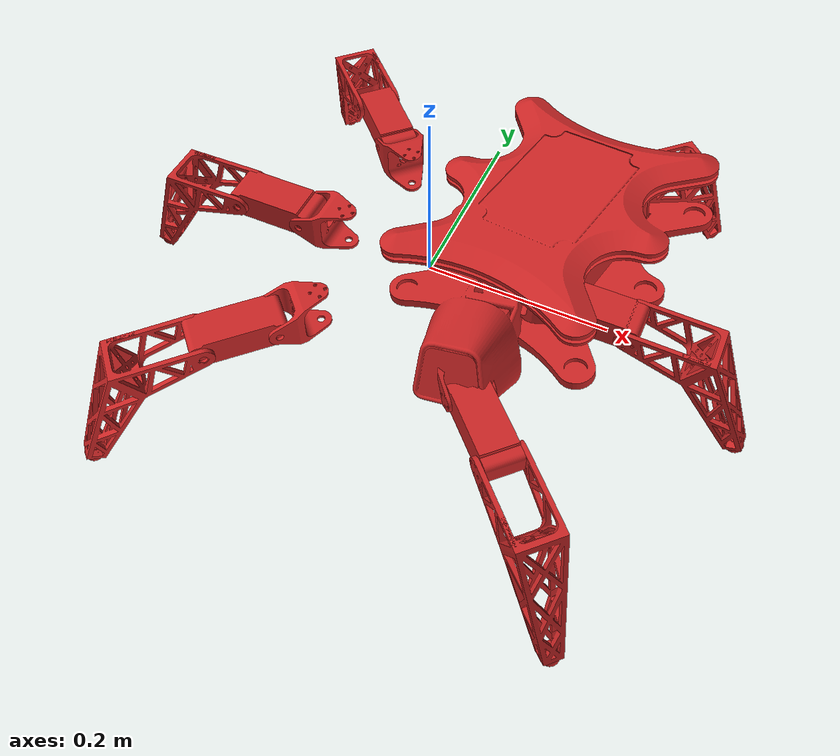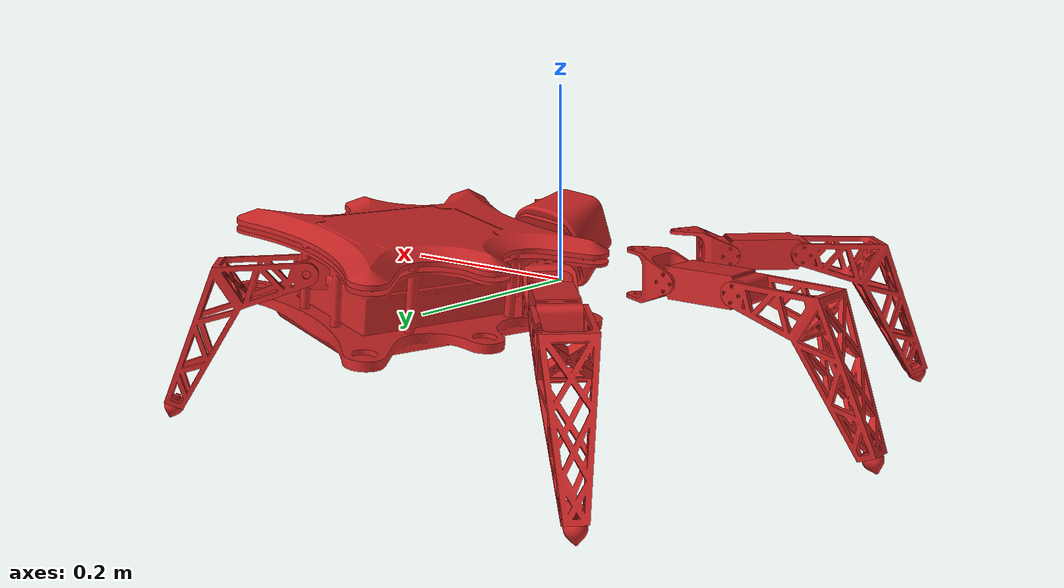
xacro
<?xml version="1.0"?>

<robot name="hexapod" xmlns:xacro="https://www.ros.org/wiki/xacro">

	<xacro:include filename="$(find hexapod_description)/urdf/links_joints_macro.xacro" />

	<!-- Used for fixing robot to Gazebo 'base_link' -->
		<link name="base_dummy"/>

 		<joint name="fixed_joint" type="fixed">
  			<parent link="base_dummy"/>
   			<child link="base_link"/>
   			<origin xyz="0 0 0" rpy="0 0 0"/>
 		</joint>

		<m_base_link name="base_link"
				origin_xyz="0 0 0" origin_rpy="0 0 0" inertia_origin_xyz="0 0 0.021" />

		<!-- LEG 1 (North East) -->
			<m_joint name="base_link__leg1_coxa" type="revolute" axis_xyz="0 0 1"
					 effort="2.8" lower="-1.5708" upper="1.5708" velocity="5.6548668"
			 		 origin_xyz="0.072981 0.109608 0.021" origin_rpy="0 3.14159 -0.7854"
					 parent="base_link" child="leg1_coxa" />

			<m_coxa_link name="leg1_coxa"
					origin_xyz="0 0 0" origin_rpy="0 3.14159 0" inertia_origin_xyz="0 0.023937 0" />

				<m_joint name="leg1_coxa__leg1_femur" type="revolute" axis_xyz="0 0 1"
				 effort="2.8" lower="-1.5708" upper="1.5708" velocity="5.6548668"
				 origin_xyz="0 0.047868 0" origin_rpy="-1.5708 0 1.5708"
				 parent="leg1_coxa" child="leg1_femur" />

				<m_femur_link name="leg1_femur"
						origin_xyz="0.0385 0 0" origin_rpy="-1.5708 0 0"
						inertia_origin_xyz="0.0385 0 0" />

					<m_joint name="leg1_femur__leg1_tibia" type="revolute" axis_xyz="0 0 1"
					 effort="2.8" lower="-1.5708" upper="1.5708" velocity="5.6548668"
					 origin_xyz="0.077 0 0" origin_rpy="0 0 0"
					 parent="leg1_femur" child="leg1_tibia"/>

					<m_tibia_link name="leg1_tibia"
							origin_xyz="0 0 0" origin_rpy="1.5708 0 0"
							inertia_origin_xyz="0.077796 -0.036156 0"/>

						<m_joint_fixed name="leg1_tibia__leg1_rubber_tip" type="fixed"
						 parent="leg1_tibia" child="leg1_rubber_tip" />

						<m_rubber_tip_link name="leg1_rubber_tip"
								origin_xyz="0.136283 -0.133814 0" origin_rpy="1.5708 0 0.3769938"
								inertia_origin_xyz="0.136283 -0.133814 0"/>

		<!-- LEG 2 (North West) -->
			<m_joint name="base_link__leg2_coxa" type="revolute" axis_xyz="0 0 1"
					 effort="2.8" lower="-1.5708" upper="1.5708" velocity="5.6548668"
			 		 origin_xyz="-0.072981 0.109608 0.021" origin_rpy="0 3.14159 0.7854"
					 parent="base_link" child="leg2_coxa" />

			<m_coxa_link name="leg2_coxa"
					origin_xyz="0 0 0" origin_rpy="0 3.14159 0" inertia_origin_xyz="0 0.023937 0"/>

				<m_joint name="leg2_coxa__leg2_femur" type="revolute" axis_xyz="0 0 1"
						 effort="2.8" lower="-1.5708" upper="1.5708" velocity="5.6548668"
						 origin_xyz="0 0.047868 0" origin_rpy="-1.5708 0 1.5708"
						 parent="leg2_coxa" child="leg2_femur" />

				<m_femur_link name="leg2_femur"
						origin_xyz="0.0385 0 0" origin_rpy="-1.5708 0 0"
						inertia_origin_xyz="0.0385 0 0"/>

					<m_joint name="leg2_femur__leg2_tibia" type="revolute" axis_xyz="0 0 1"
					 effort="2.8" lower="-1.5708" upper="1.5708" velocity="5.6548668"
					 origin_xyz="0.077 0 0" origin_rpy="0 0 0"
					 parent="leg2_femur" child="leg2_tibia" />

					<m_tibia_link name="leg2_tibia"
							origin_xyz="0 0 0" origin_rpy="1.5708 0 0"
							inertia_origin_xyz="0.077796 -0.036156 0"/>

						<m_joint_fixed name="leg2_tibia__leg2_rubber_tip" type="fixed"
						 parent="leg2_tibia" child="leg2_rubber_tip" />

						<m_rubber_tip_link name="leg2_rubber_tip"
								origin_xyz="0.136283 -0.133814 0" origin_rpy="1.5708 0 0.3769938"
								inertia_origin_xyz="0.136283 -0.133814 0"/>

		<!-- LEG 3 (East) -->
			<m_joint name="base_link__leg3_coxa" type="revolute" axis_xyz="0 0 1"
					 effort="2.8" lower="-1.5708" upper="1.5708" velocity="5.6548668"
			 		 origin_xyz="0.09850 0 0.021" origin_rpy="0 3.14159 -1.5708"
					 parent="base_link" child="leg3_coxa" />

			<m_coxa_link name="leg3_coxa"
					origin_xyz="0 0 0" origin_rpy="0 3.14159 0" inertia_origin_xyz="0 0.023937 0"/>

				<m_joint name="leg3_coxa__leg3_femur" type="revolute" axis_xyz="0 0 1"
						 effort="2.8" lower="-1.5708" upper="1.5708" velocity="5.6548668"
						 origin_xyz="0 0.047868 0" origin_rpy="-1.5708 0 1.5708"
						 parent="leg3_coxa" child="leg3_femur" />

				<m_femur_link name="leg3_femur"
						origin_xyz="0.0385 0 0" origin_rpy="-1.5708 0 0"
						inertia_origin_xyz="0.0385 0 0"/>

					<m_joint name="leg3_femur__leg3_tibia" type="revolute" axis_xyz="0 0 1"
					 effort="2.8" lower="-1.5708" upper="1.5708" velocity="5.6548668"
					 origin_xyz="0.077 0 0" origin_rpy="0 0 0"
					 parent="leg3_femur" child="leg3_tibia" />

					<m_tibia_link name="leg3_tibia"
							origin_xyz="0 0 0" origin_rpy="1.5708 0 0"
							inertia_origin_xyz="0.077796 -0.036156 0"/>

						<m_joint_fixed name="leg3_tibia__leg3_rubber_tip" type="fixed"
						 parent="leg3_tibia" child="leg3_rubber_tip" />

						<m_rubber_tip_link name="leg3_rubber_tip"
								origin_xyz="0.136283 -0.133814 0" origin_rpy="1.5708 0 0.3769938"
								inertia_origin_xyz="0.136283 -0.133814 0"/>

		<!-- LEG 4 (West) -->
			<m_joint name="base_link__leg4_coxa" type="revolute" axis_xyz="0 0 1"
					 effort="2.8" lower="-1.5708" upper="1.5708" velocity="5.6548668"
			 		 origin_xyz="-0.09850 0 0.021" origin_rpy="0 3.14159 1.5708"
					 parent="base_link" child="leg4_coxa" />

			<m_coxa_link name="leg4_coxa"
					origin_xyz="0 0 0" origin_rpy="0 3.14159 0" inertia_origin_xyz="0 0.023937 0"/>

				<m_joint name="leg4_coxa__leg4_femur" type="revolute" axis_xyz="0 0 1"
				 effort="2.8" lower="-1.5708" upper="1.5708" velocity="5.6548668"
				 origin_xyz="0 0.047868 0" origin_rpy="-1.5708 0 1.5708"
				 parent="leg4_coxa" child="leg4_femur" />

				<m_femur_link name="leg4_femur"
						origin_xyz="0.0385 0 0" origin_rpy="-1.5708 0 0"
						inertia_origin_xyz="0.0385 0 0"/>

					<m_joint name="leg4_femur__leg4_tibia" type="revolute" axis_xyz="0 0 1"
					 effort="2.8" lower="-1.5708" upper="1.5708" velocity="5.6548668"
					 origin_xyz="0.077 0 0" origin_rpy="0 0 0"
					 parent="leg4_femur" child="leg4_tibia" />

					<m_tibia_link name="leg4_tibia"
							origin_xyz="0 0 0" origin_rpy="1.5708 0 0"
							inertia_origin_xyz="0.077796 -0.036156 0"/>

						<m_joint_fixed name="leg4_tibia__leg4_rubber_tip" type="fixed"
						 parent="leg4_tibia" child="leg4_rubber_tip" />

						<m_rubber_tip_link name="leg4_rubber_tip"
								origin_xyz="0.136283 -0.133814 0" origin_rpy="1.5708 0 0.3769938"
								inertia_origin_xyz="0.136283 -0.133814 0"/>

		<!-- LEG 5 (South East) -->
			<m_joint name="base_link__leg5_coxa" type="revolute" axis_xyz="0 0 1"
					 effort="2.8" lower="-1.5708" upper="1.5708" velocity="5.6548668"
			 		 origin_xyz="0.072981 -0.109608 0.021" origin_rpy="0 3.14159 -2.3562"
					 parent="base_link" child="leg5_coxa" />

			<m_coxa_link name="leg5_coxa"
					origin_xyz="0 0 0" origin_rpy="0 3.14159 0" inertia_origin_xyz="0 0.023937 0"/>

				<m_joint name="leg5_coxa__leg5_femur" type="revolute" axis_xyz="0 0 1"
						 effort="2.8" lower="-1.5708" upper="1.5708" velocity="5.6548668"
						 origin_xyz="0 0.047868 0" origin_rpy="-1.5708 0 1.5708"
						 parent="leg5_coxa" child="leg5_femur" />

				<m_femur_link name="leg5_femur"
						origin_xyz="0.0385 0 0" origin_rpy="-1.5708 0 0"
						inertia_origin_xyz="0.0385 0 0"/>

					<m_joint name="leg5_femur__leg5_tibia" type="revolute" axis_xyz="0 0 1"
					 effort="2.8" lower="-1.5708" upper="1.5708" velocity="5.6548668"
					 origin_xyz="0.077 0 0" origin_rpy="0 0 0"
					 parent="leg5_femur" child="leg5_tibia" />

					<m_tibia_link name="leg5_tibia"
							origin_xyz="0 0 0" origin_rpy="1.5708 0 0"
							inertia_origin_xyz="0.077796 -0.036156 0"/>

						<m_joint_fixed name="leg5_tibia__leg5_rubber_tip" type="fixed"
						 parent="leg5_tibia" child="leg5_rubber_tip" />

						<m_rubber_tip_link name="leg5_rubber_tip"
								origin_xyz="0.136283 -0.133814 0" origin_rpy="1.5708 0 0.3769938"
								inertia_origin_xyz="0.136283 -0.133814 0"/>

		<!-- LEG 6 (South West) -->
			<m_joint name="base_link__leg6_coxa" type="revolute" axis_xyz="0 0 1"
					 effort="2.8" lower="-1.5708" upper="1.5708" velocity="5.6548668"
			 		 origin_xyz="-0.072981 -0.109608 0.021" origin_rpy="0 3.14159 2.35622"
					 parent="base_link" child="leg6_coxa" />

			<m_coxa_link name="leg6_coxa"
					origin_xyz="0 0 0" origin_rpy="0 3.14159 0" inertia_origin_xyz="0 0.023937 0"/>

				<m_joint name="leg6_coxa__leg6_femur" type="revolute" axis_xyz="0 0 1"
						 effort="2.8" lower="-1.5708" upper="1.5708" velocity="5.6548668"
						 origin_xyz="0 0.047868 0" origin_rpy="-1.5708 0 1.5708"
						 parent="leg6_coxa" child="leg6_femur" />

				<m_femur_link name="leg6_femur"
						origin_xyz="0.0385 0 0" origin_rpy="-1.5708 0 0"
						inertia_origin_xyz="0.0385 0 0"/>

					<m_joint name="leg6_femur__leg6_tibia" type="revolute" axis_xyz="0 0 1"
					 effort="2.8" lower="-1.5708" upper="1.5708" velocity="5.6548668"
					 origin_xyz="0.077 0 0" origin_rpy="0 0 0"
					 parent="leg6_femur" child="leg6_tibia" />

					<m_tibia_link name="leg6_tibia"
							origin_xyz="0 0 0" origin_rpy="1.5708 0 0"
							inertia_origin_xyz="0.077796 -0.036156 0"/>

						<m_joint_fixed name="leg6_tibia__leg6_rubber_tip" type="fixed"
						 parent="leg6_tibia" child="leg6_rubber_tip" />

						<m_rubber_tip_link name="leg6_rubber_tip"
								origin_xyz="0.136283 -0.133814 0" origin_rpy="1.5708 0 0.3769938"
								inertia_origin_xyz="0.136283 -0.133814 0"/>

	<transmission name ="trans_base_link__leg1_coxa">
		<type>transmission_interface/SimpleTransmission</type>
		<joint name="base_link__leg1_coxa">
			<hardwareInterface>EffortJointInterface</hardwareInterface>
		</joint>
		<actuator name="motor_base_link__leg1_coxa">
			<hardwareInterface>EffortJointInterface</hardwareInterface>
			<mechanicalReduction>1</mechanicalReduction>
		</actuator>
	</transmission>

	<transmission name ="trans_leg1_coxa__leg1_femur">
		<type>transmission_interface/SimpleTransmission</type>
		<joint name="leg1_coxa__leg1_femur">
			<hardwareInterface>EffortJointInterface</hardwareInterface>
		</joint>
		<actuator name="motor_leg1_coxa__leg1_femur">
			<hardwareInterface>EffortJointInterface</hardwareInterface>
			<mechanicalReduction>1</mechanicalReduction>
		</actuator>
	</transmission>

	<transmission name ="trans_leg1_femur__leg1_tibia">
		<type>transmission_interface/SimpleTransmission</type>
		<joint name="leg1_femur__leg1_tibia">
			<hardwareInterface>EffortJointInterface</hardwareInterface>
		</joint>
		<actuator name="motor_leg1_femur__leg1_tibia">
			<hardwareInterface>EffortJointInterface</hardwareInterface>
			<mechanicalReduction>1</mechanicalReduction>
		</actuator>
	</transmission>

	<transmission name ="trans_base_link__leg2_coxa">
		<type>transmission_interface/SimpleTransmission</type>
		<joint name="base_link__leg2_coxa">
			<hardwareInterface>EffortJointInterface</hardwareInterface>
		</joint>
		<actuator name="motor_base_link__leg2_coxa">
			<hardwareInterface>EffortJointInterface</hardwareInterface>
			<mechanicalReduction>1</mechanicalReduction>
		</actuator>
	</transmission>

	<transmission name ="trans_leg2_coxa__leg2_femur">
		<type>transmission_interface/SimpleTransmission</type>
		<joint name="leg2_coxa__leg2_femur">
			<hardwareInterface>EffortJointInterface</hardwareInterface>
		</joint>
		<actuator name="motor_leg2_coxa__leg2_femur">
			<hardwareInterface>EffortJointInterface</hardwareInterface>
			<mechanicalReduction>1</mechanicalReduction>
		</actuator>
	</transmission>

	<transmission name ="trans_leg2_femur__leg2_tibia">
		<type>transmission_interface/SimpleTransmission</type>
		<joint name="leg2_femur__leg2_tibia">
			<hardwareInterface>EffortJointInterface</hardwareInterface>
		</joint>
		<actuator name="motor_leg2_femur__leg2_tibia">
			<hardwareInterface>EffortJointInterface</hardwareInterface>
			<mechanicalReduction>1</mechanicalReduction>
		</actuator>
	</transmission>

	<transmission name ="trans_base_link__leg3_coxa">
		<type>transmission_interface/SimpleTransmission</type>
		<joint name="base_link__leg3_coxa">
			<hardwareInterface>EffortJointInterface</hardwareInterface>
		</joint>
		<actuator name="motor_base_link__leg3_coxa">
			<hardwareInterface>EffortJointInterface</hardwareInterface>
			<mechanicalReduction>1</mechanicalReduction>
		</actuator>
	</transmission>

	<transmission name ="trans_leg3_coxa__leg3_femur">
		<type>transmission_interface/SimpleTransmission</type>
		<joint name="leg3_coxa__leg3_femur">
			<hardwareInterface>EffortJointInterface</hardwareInterface>
		</joint>
		<actuator name="motor_leg3_coxa__leg3_femur">
			<hardwareInterface>EffortJointInterface</hardwareInterface>
			<mechanicalReduction>1</mechanicalReduction>
		</actuator>
	</transmission>

	<transmission name ="trans_leg3_femur__leg3_tibia">
		<type>transmission_interface/SimpleTransmission</type>
		<joint name="leg3_femur__leg3_tibia">
			<hardwareInterface>EffortJointInterface</hardwareInterface>
		</joint>
		<actuator name="motor_leg3_femur__leg3_tibia">
			<hardwareInterface>EffortJointInterface</hardwareInterface>
			<mechanicalReduction>1</mechanicalReduction>
		</actuator>
	</transmission>

	<transmission name ="trans_base_link__leg4_coxa">
		<type>transmission_interface/SimpleTransmission</type>
		<joint name="base_link__leg4_coxa">
			<hardwareInterface>EffortJointInterface</hardwareInterface>
		</joint>
		<actuator name="motor_base_link__leg4_coxa">
			<hardwareInterface>EffortJointInterface</hardwareInterface>
			<mechanicalReduction>1</mechanicalReduction>
		</actuator>
	</transmission>

	<transmission name ="trans_leg4_coxa__leg4_femur">
		<type>transmission_interface/SimpleTransmission</type>
		<joint name="leg4_coxa__leg4_femur">
			<hardwareInterface>EffortJointInterface</hardwareInterface>
		</joint>
		<actuator name="motor_leg4_coxa__leg4_femur">
			<hardwareInterface>EffortJointInterface</hardwareInterface>
			<mechanicalReduction>1</mechanicalReduction>
		</actuator>
	</transmission>

	<transmission name ="trans_leg4_femur__leg4_tibia">
		<type>transmission_interface/SimpleTransmission</type>
		<joint name="leg4_femur__leg4_tibia">
			<hardwareInterface>EffortJointInterface</hardwareInterface>
		</joint>
		<actuator name="motor_leg4_femur__leg4_tibia">
			<hardwareInterface>EffortJointInterface</hardwareInterface>
			<mechanicalReduction>1</mechanicalReduction>
		</actuator>
	</transmission>

	<transmission name ="trans_base_link__leg5_coxa">
		<type>transmission_interface/SimpleTransmission</type>
		<joint name="base_link__leg5_coxa">
			<hardwareInterface>EffortJointInterface</hardwareInterface>
		</joint>
		<actuator name="motor_base_link__leg5_coxa">
			<hardwareInterface>EffortJointInterface</hardwareInterface>
			<mechanicalReduction>1</mechanicalReduction>
		</actuator>
	</transmission>

	<transmission name ="trans_leg5_coxa__leg5_femur">
		<type>transmission_interface/SimpleTransmission</type>
		<joint name="leg5_coxa__leg5_femur">
			<hardwareInterface>EffortJointInterface</hardwareInterface>
		</joint>
		<actuator name="motor_leg5_coxa__leg5_femur">
			<hardwareInterface>EffortJointInterface</hardwareInterface>
			<mechanicalReduction>1</mechanicalReduction>
		</actuator>
	</transmission>

	<transmission name ="trans_leg5_femur__leg5_tibia">
		<type>transmission_interface/SimpleTransmission</type>
		<joint name="leg5_femur__leg5_tibia">
			<hardwareInterface>EffortJointInterface</hardwareInterface>
		</joint>
		<actuator name="motor_leg5_femur__leg5_tibia">
			<hardwareInterface>EffortJointInterface</hardwareInterface>
			<mechanicalReduction>1</mechanicalReduction>
		</actuator>
	</transmission>

	<transmission name ="trans_base_link__leg6_coxa">
		<type>transmission_interface/SimpleTransmission</type>
		<joint name="base_link__leg6_coxa">
			<hardwareInterface>EffortJointInterface</hardwareInterface>
		</joint>
		<actuator name="motor_base_link__leg6_coxa">
			<hardwareInterface>EffortJointInterface</hardwareInterface>
			<mechanicalReduction>1</mechanicalReduction>
		</actuator>
	</transmission>

	<transmission name ="trans_leg6_coxa__leg6_femur">
		<type>transmission_interface/SimpleTransmission</type>
		<joint name="leg6_coxa__leg6_femur">
			<hardwareInterface>EffortJointInterface</hardwareInterface>
		</joint>
		<actuator name="motor_leg6_coxa__leg6_femur">
			<hardwareInterface>EffortJointInterface</hardwareInterface>
			<mechanicalReduction>1</mechanicalReduction>
		</actuator>
	</transmission>

	<transmission name ="trans_leg6_femur__leg6_tibia">
		<type>transmission_interface/SimpleTransmission</type>
		<joint name="leg6_femur__leg6_tibia">
			<hardwareInterface>EffortJointInterface</hardwareInterface>
		</joint>
		<actuator name="motor_leg6_femur__leg6_tibia">
			<hardwareInterface>EffortJointInterface</hardwareInterface>
			<mechanicalReduction>1</mechanicalReduction>
		</actuator>
	</transmission>
</robot>

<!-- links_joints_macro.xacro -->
<robot xmlns:xacro="https://www.ros.org/wiki/xacro">

  <!-- Import all Gazebo-customization elements, including Gazebo colors -->
  <xacro:include filename="$(find hexapod_description)/urdf/hexapod.gazebo" />
  <!-- Import Rviz colors -->
  <xacro:include filename="$(find hexapod_description)/urdf/materials.xacro" />

	<xacro:macro name="m_base_link" params="name origin_xyz origin_rpy inertia_origin_xyz">
		<link name="${name}">
			<collision>
				<origin xyz="${origin_xyz}" rpy="${origin_rpy}" />
				<geometry>
					<mesh filename="package://hexapod_description/meshes/base_link_collision.stl" scale="0.001 0.001 0.001" />
				</geometry>
			</collision>

			<visual>
				<origin xyz="${origin_xyz}" rpy="${origin_rpy}" />
				<geometry>
					<mesh filename="package://hexapod_description/meshes/base_link.stl" scale="0.001 0.001 0.001" />
				</geometry>
				<material name="red" />
			</visual>

			<inertial>
      			<origin xyz="${inertia_origin_xyz}" rpy="0 0 0"/>
      			<mass value="1.3"/>
      			<inertia ixx="5.404e-3"			ixy="0" 			ixz="0"
      					 iyx="0"				iyy="3.169e-3" 		iyz="0"
      					 izx="0"  				izy="0" 			izz="8.191e-3"/>
    		</inertial>
		</link>
	</xacro:macro>

	<xacro:macro name="m_coxa_link" params="name origin_xyz origin_rpy inertia_origin_xyz">
		<link name="${name}">
			<collision>
				<origin xyz="${origin_xyz}" rpy="${origin_rpy}" />
				<geometry>
					<mesh filename="package://hexapod_description/meshes/leg_coxa_collision.stl" scale="0.001 0.001 0.001" />
				</geometry>
			</collision>

			<visual>
				<origin xyz="${origin_xyz}" rpy="${origin_rpy}" />
				<geometry>
					<mesh filename="package://hexapod_description/meshes/leg_coxa.stl" scale="0.001 0.001 0.001" />
				</geometry>
				<material name="red" />
			</visual>

			<inertial>
      			<origin xyz="${inertia_origin_xyz}" rpy="${origin_rpy}"/>
      			<mass value="0.04"/>
      			<inertia ixx="1.605e-5"			ixy="-5.7988e-8"		ixz="0"
      					 iyx="-5.7988e-8"		iyy="2.012e-5"			iyz="5.7639e-8"
      					 izx="0"				izy="5.7639e-8"			izz="1.605e-5"/>
    		</inertial>
		</link>
	</xacro:macro>

	<xacro:macro name="m_femur_link" params="name origin_xyz origin_rpy inertia_origin_xyz">
		<link name="${name}">
			<collision>
				<origin xyz="${origin_xyz}" rpy="${origin_rpy}" />
				<geometry>
					<mesh filename="package://hexapod_description/meshes/leg_femur_collision.stl" scale="0.001 0.001 0.001" />
				</geometry>
			</collision>

			<visual>
				<origin xyz="${origin_xyz}" rpy="${origin_rpy}" />
				<geometry>
					<mesh filename="package://hexapod_description/meshes/leg_femur.stl" scale="0.001 0.001 0.001" />
				</geometry>
				<material name="red" />
			</visual>

			<inertial>
      			<origin xyz="${inertia_origin_xyz}" rpy="0 0 1.5708"/>
      			<mass value="0.12"/>
      			<inertia ixx="1.005e-4"			ixy="0"				ixz="0"
      					 iyx="0"  				iyy="2.532e-5"		iyz="0"
      					 izx="0"				izy="0"				izz="1.071e-4"/>
    		</inertial>
		</link>
	</xacro:macro>

	<xacro:macro name="m_tibia_link" params="name origin_xyz origin_rpy inertia_origin_xyz">
		<link name="${name}">
			<collision>
				<origin xyz="${origin_xyz}" rpy="${origin_rpy}" />
				<geometry>
					<mesh filename="package://hexapod_description/meshes/leg_tibia_collision.stl" scale="0.001 0.001 0.001" />
				</geometry>
			</collision>

			<visual>
				<origin xyz="${origin_xyz}" rpy="${origin_rpy}" />
				<geometry>
					<mesh filename="package://hexapod_description/meshes/leg_tibia.stl" scale="0.001 0.001 0.001" />
				</geometry>
				<material name="red" />
			</visual>

			<inertial>
      			<origin xyz="${inertia_origin_xyz}" rpy="${origin_rpy}"/>
      			<mass value="0.098"/>
      			<inertia ixx="1.515e-4"			ixy="1.52255e-7"			ixz="-9.144e-5"
      					 iyx="1.52255e-7"  		iyy="2.328e-4"				iyz="7.0753e-8"
      					 izx="-9.144e-5"		izy="7.0753e-8"				izz="1.159e-4"/>
    		</inertial>
		</link>
	</xacro:macro>

	<xacro:macro name="m_rubber_tip_link" params="name origin_xyz origin_rpy inertia_origin_xyz">
		<link name="${name}">
			<collision>
				<origin xyz="${origin_xyz}" rpy="${origin_rpy}" />
				<geometry>
					<mesh filename="package://hexapod_description/meshes/leg_rubber_tip.stl" scale="0.001 0.001 0.001" />
				</geometry>
			</collision>

			<visual>
				<origin xyz="${origin_xyz}" rpy="${origin_rpy}" />
				<geometry>
					<mesh filename="package://hexapod_description/meshes/leg_rubber_tip.stl" scale="0.001 0.001 0.001" />
				</geometry>
				<material name="red" />
			</visual>

			<inertial>
      			<origin xyz="${inertia_origin_xyz}" rpy="${origin_rpy}"/>
      			<mass value="0.002"/>
      			<inertia ixx="1.00584e-7" 			ixy="0" 			ixz="0"
      					 iyx="0"  					iyy="1.00579e-7"	iyz="0"
      					 izx="0" 					izy="0" 			izz="1.05103e-7"/>
    		</inertial>
		</link>
	</xacro:macro>

	<xacro:macro name="m_joint" params="name type axis_xyz effort lower upper velocity origin_xyz origin_rpy parent child" >
		<joint name="${name}" type="${type}">
			<axis xyz="${axis_xyz}" />
			<limit effort="${effort}" lower="${lower}" upper="${upper}" velocity="${velocity}" />
			<origin xyz="${origin_xyz}" rpy="${origin_rpy}" />
			<parent link="${parent}" />
			<child link="${child}" />

		</joint>
	</xacro:macro>

	<xacro:macro name="m_joint_fixed" params="name type parent child" >
		<joint name="${name}" type="${type}">
			<parent link="${parent}" />
			<child link="${child}" />
		</joint>
	</xacro:macro>

</robot>
